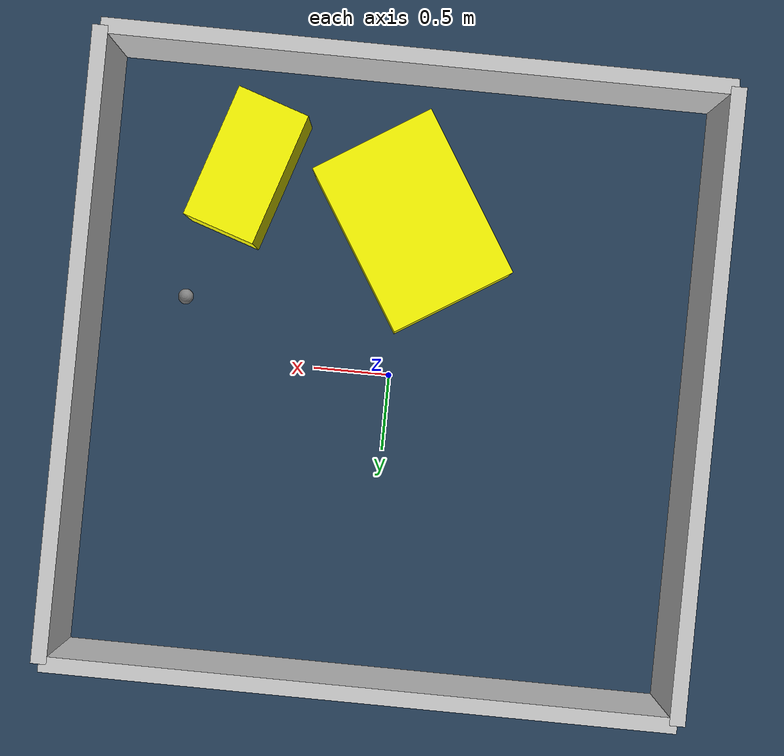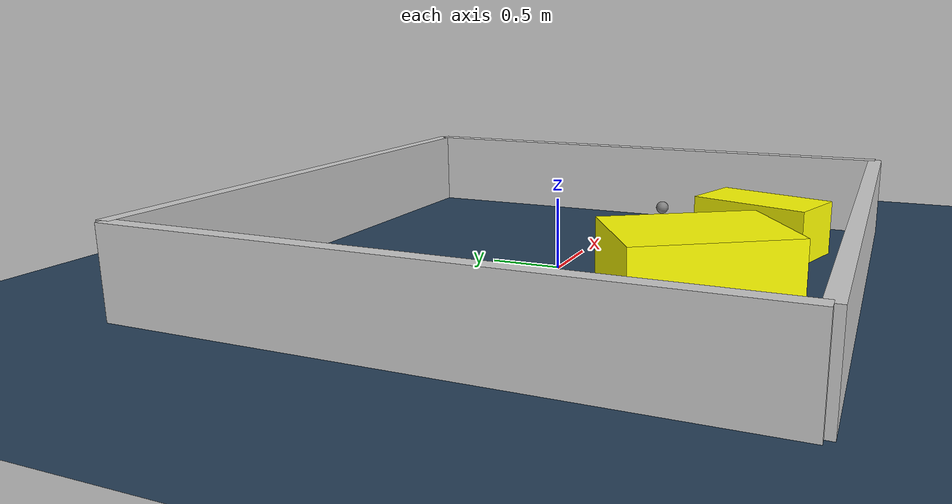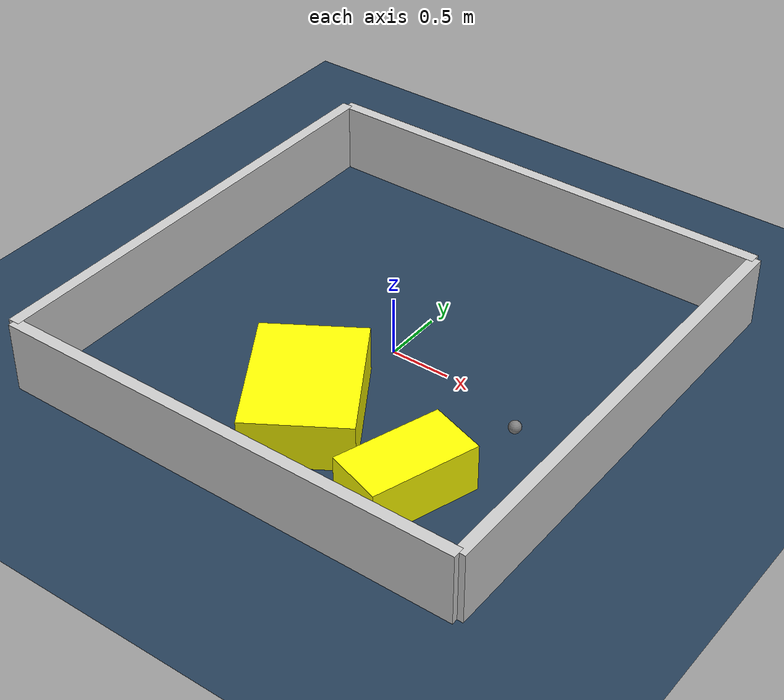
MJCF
<?xml version="1.0" ?>
<mujoco model="generated_environment">
  <option timestep="0.01" integrator="RK4" cone="elliptic"/>
  <default>
    <geom density="1"/>
  </default>
  <asset>
    <texture builtin="gradient" height="3072" rgb1="0.3 0.5 0.7" rgb2="0 0 0" type="skybox" width="512"/>
    <texture builtin="checker" height="300" mark="edge" markrgb="0.8 0.8 0.8" name="groundplane" rgb1="0.2 0.3 0.4" rgb2="0.1 0.2 0.3" type="2d" width="300"/>
    <material name="groundplane" reflectance="0.2" texrepeat="5 5" texture="groundplane" texuniform="true"/>
    <material name="robot" rgba="0.0 1.0 0.0 1"/>
  </asset>
  <worldbody>
    <light dir="0 0 -1" directional="true" pos="0 0 1.5"/>
    <geom condim="4" friction="1.0 0.005 0.001" material="groundplane" name="floor" size="0 0 0.05" type="plane"/>
    <body name="walls">
      <geom name="wall_1" condim="4" pos="-2.0 0.0 0.3" rgba="0.800000011920929 0.800000011920929 0.800000011920929 1.0" size="0.05 2.0 0.3" type="box"/>
      <geom name="wall_2" condim="4" pos="2.0 0.0 0.3" rgba="0.800000011920929 0.800000011920929 0.800000011920929 1.0" size="0.05 2.0 0.3" type="box"/>
      <geom name="wall_3" condim="4" pos="0.0 -2.0 0.3" rgba="0.800000011920929 0.800000011920929 0.800000011920929 1.0" size="2.0 0.05 0.3" type="box"/>
      <geom name="wall_4" condim="4" pos="0.0 2.0 0.3" rgba="0.800000011920929 0.800000011920929 0.800000011920929 1.0" size="2.0 0.05 0.3" type="box"/>
    </body>
    <body name="robot">
      <joint name="joint_x" type="slide" pos="0 0 0" axis="1 0 0"/>
      <joint name="joint_y" type="slide" pos="0 0 0" axis="0 1 0"/>
      <geom name="robot" type="sphere" pos="1.3702809343980422 -0.3858718654943427 0.2" size="0.05" mass="5." friction="1.0 0.005 0.0001" condim="4"/>
      <site name="sensor_ball"/>
    </body>
    <body name="obstacle_1_movable">
      <geom name="obstacle_1_movable" condim="4" pos="1.0390905768612018 -1.2500780233849431 0.2" euler="0 0 161.81895658139652" friction="1.0 0.005 0.001" rgba="1 1 0 1" size="0.24154266429311286 0.4458968922899972 0.2" type="box" mass="0.1"/>
      <joint type="free"/>
    </body>
    <body name="obstacle_2_movable">
      <geom name="obstacle_2_movable" condim="4" pos="-0.05651940075846462 -1.0009117533272618 0.2" euler="0 0 122.14516281807103" friction="1.0 0.005 0.001" rgba="1 1 0 1" size="0.5838190987698668 0.425244819513487 0.2" type="box" mass="0.1"/>
      <joint type="free"/>
    </body>
  </worldbody>
  <actuator>
    <motor name="actuator_x" joint="joint_x" gear="1" ctrlrange="-1 1"/>
    <motor name="actuator_y" joint="joint_y" gear="1" ctrlrange="-1 1"/>
  </actuator>
</mujoco>
